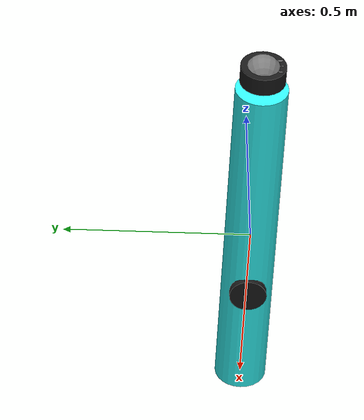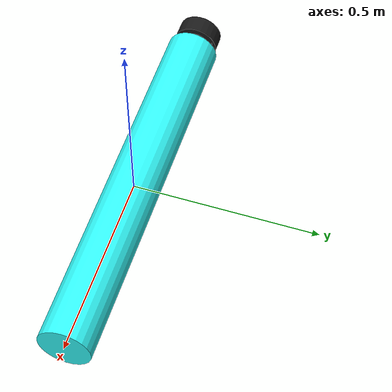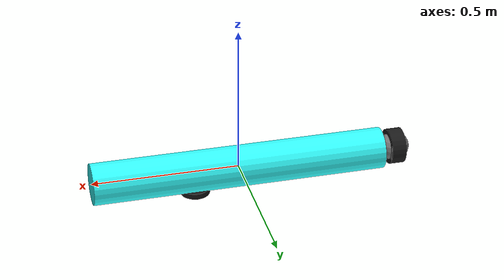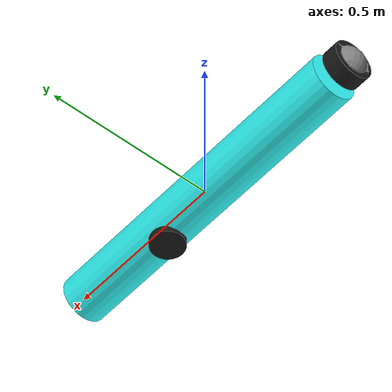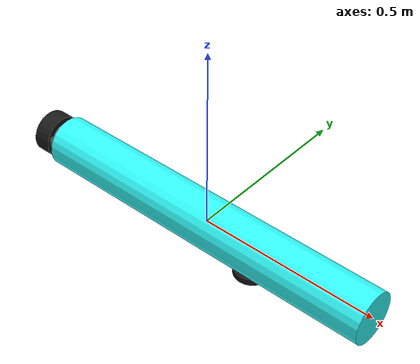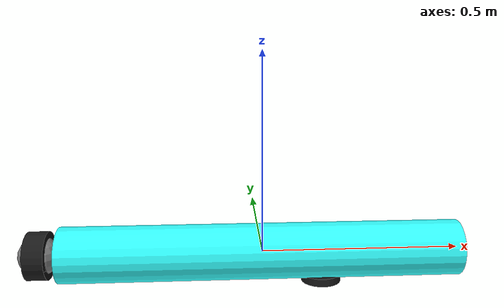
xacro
<?xml version="1.0"?>
<robot name="perri_auv" xmlns:xacro="http://www.ros.org/wiki/xacro">

    <xacro:include filename="robot_core.xacro" />

    <xacro:include filename="gazebo_control.xacro" />

    <xacro:include filename="lidar.xacro" />

    <xacro:include filename="inertial_macros.xacro" />

</robot>

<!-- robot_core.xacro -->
<robot xmlns:xacro="http://www.ros.org/wiki/xacro">
<!--based on asignment 2 made by Pierre O. H. Boniface-->
    <xacro:include filename="inertial_macros.xacro" />

    <xacro:property name="hull_radius" value="0.07"/>
    <xacro:property name="hull_length" value="1.0"/>
    <xacro:property name="hull_mass"   value="11.618"/>

    <xacro:property name="prop_radius" value="0.06"/>
    <xacro:property name="prop_length" value="0.05"/>
    <xacro:property name="prop_mass"   value="0.37"/>

    <material name="blue"> <color rgba="0.2 1.0 1.0 1.0"/> </material>
    <material name="black"><color rgba="0.1 0.1 0.1 1.0"/> </material>
    <material name="grey"> <color rgba="0.5 0.5 0.5 1.0"/> </material>

    <link name="base_footprint"/>

    <joint name="base_joint" type="fixed">
        <parent link="base_footprint"/>
        <child link="base_link"/>
        <origin xyz="0 0 0" rpy="0 0 0"/>
    </joint>

    <link name="base_link">
        <visual>
            <geometry>
                <cylinder radius="${hull_radius}" length="${hull_length}"/>
            </geometry>
            <origin xyz="0 0 0" rpy="0 -${pi/2} 0"/>
            <material name="blue"/>
        </visual>
        <collision>
            <geometry>
                <cylinder radius="${hull_radius}" length="${hull_length}"/>
            </geometry>
            <origin xyz="0 0 0" rpy="0 -${pi/2} 0"/>
        </collision>
        <xacro:inertial_cylinder mass="${hull_mass}" length="${hull_length}" radius="${hull_radius}">
            <origin xyz="0 0 0" rpy="0 -${pi/2} 0"/>
        </xacro:inertial_cylinder>
        <sensor name="imu_sensor" type="imu">
            <always_on>1</always_on>
            <update_rate>1</update_rate>
            <visualize>true</visualize>
            <topic>imu</topic>
        </sensor>
    </link>

    <link name="steering_yaw_link">
        <visual>
            <geometry><sphere radius="0.05"/></geometry>
            <material name="grey"/>
        </visual>
        <xacro:inertial_sphere mass="0.05" radius="0.05">
            <origin xyz="0 0 0" rpy="0 0 0"/>
        </xacro:inertial_sphere>
    </link>

    <joint name="steering_yaw_joint" type="revolute">
        <parent link="base_link"/>
        <child link="steering_yaw_link"/>
        <origin xyz="-0.55 0 0" rpy="0 0 0"/>
        <axis xyz="0 1 0"/>
        <limit lower="-${pi/2}" upper="${pi/2}" effort="50" velocity="100"/>
        <dynamics damping="2.0" friction="2.0"/>
    </joint>

    <link name="steering_pitch_link">
        <visual>
            <geometry><box size="0.05 0.1 0.05"/></geometry>
            <material name="grey"/>
        </visual>
        <xacro:inertial_box mass="0.05" x="0.05" y="0.1" z="0.05">
            <origin xyz="0 0 0" rpy="0 0 0"/>
        </xacro:inertial_box>
    </link>

    <joint name="steering_pitch_joint" type="revolute">
        <parent link="steering_yaw_link"/>
        <child link="steering_pitch_link"/>
        <origin xyz="0.0 0 0" rpy="0 0 0"/>
        <axis xyz="0 0 1"/>
        <limit lower="-${pi/2}" upper="${pi/2}" effort="50" velocity="100"/>
        <dynamics damping="2.0" friction="2.0"/>
    </joint>

    <link name="propeller_link">
        <visual>
            <geometry>
                <cylinder radius="${prop_radius}" length="${prop_length}"/>
            </geometry>
            <origin xyz="0 0 0" rpy="0 -${pi/2} 0"/>
            <material name="black"/>
        </visual>
        <collision>
            <geometry>
                <cylinder radius="${prop_radius}" length="${prop_length}"/>
            </geometry>
            <origin xyz="0 0 0" rpy="0 -${pi/2} 0"/>
        </collision>
        <xacro:inertial_cylinder mass="${prop_mass}" length="${prop_length}" radius="${prop_radius}">
            <origin xyz="0 0 0" rpy="0 -${pi/2} 0"/>
        </xacro:inertial_cylinder>
    </link>

    <joint name="propeller_joint" type="continuous">
        <parent link="steering_pitch_link"/>
        <child link="propeller_link"/>
        <origin xyz="0 0 0" rpy="0 0 0"/> <axis xyz="1 0 0"/> <limit effort="100.0" velocity="10000.0"/>
        <dynamics damping="0.05" friction="0.0"/>
    </joint>

    <link name="moving_mass">
        <visual>
            <geometry>
                <cylinder radius="0.05" length="0.1"/>
            </geometry>
            <origin xyz="0 0 0" rpy="0 -${pi/2} 0"/>
            <material name="black"/>
        </visual>
        <xacro:inertial_cylinder mass="2.0" length="0.1" radius="0.1">
             <origin xyz="0 0 0" rpy="0 -${pi/2} 0"/>
        </xacro:inertial_cylinder>
    </link>

    <joint name="moving_mass_joint" type="prismatic">
        <parent link="base_link"/>
        <child link="moving_mass"/>
        <origin xyz="0 0 0" rpy="0 0 0"/>
        <axis xyz="1 0 0"/>
        <limit effort="1000.0" lower="-0.5" upper="0.5" velocity="10"/>
    </joint>
    <gazebo reference="base_link">
        <sensor name="imu_sensor" type="imu">
            <always_on>true</always_on>
            <update_rate>100.0</update_rate>
            <topic>imu_sensor_topic</topic>
        </sensor>
    </gazebo>
    <gazebo reference="base_link"> <material>Gazebo/Blue</material> </gazebo>
    <gazebo reference="propeller_link"> <material>Gazebo/Black</material> </gazebo>
    <gazebo reference="moving_mass"> <material>Gazebo/Black</material> </gazebo>

</robot>

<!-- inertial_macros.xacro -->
<robot xmlns:xacro="http://www.ros.org/wiki/xacro" >

    <xacro:macro name="inertial_sphere" params="mass radius *origin">
        <inertial>
            <xacro:insert_block name="origin"/>
            <mass value="${mass}" />
            <inertia ixx="${(2/5) * mass * (radius*radius)}" ixy="0.0" ixz="0.0"
                     iyy="${(2/5) * mass * (radius*radius)}" iyz="0.0"
                     izz="${(2/5) * mass * (radius*radius)}" />
        </inertial>
    </xacro:macro>

    <xacro:macro name="inertial_box" params="mass x y z *origin">
        <inertial>
            <xacro:insert_block name="origin"/>
            <mass value="${mass}" />
            <inertia ixx="${(1/12) * mass * (y*y+z*z)}" ixy="0.0" ixz="0.0"
                    iyy="${(1/12) * mass * (x*x+z*z)}" iyz="0.0"
                    izz="${(1/12) * mass * (x*x+y*y)}" />
        </inertial>
    </xacro:macro>

    <xacro:macro name="inertial_cylinder" params="mass length radius *origin">
        <inertial>
            <xacro:insert_block name="origin"/>
            <mass value="${mass}" />
            <inertia ixx="${(1/12) * mass * (3*radius*radius + length*length)}" ixy="0.0" ixz="0.0"
                    iyy="${(1/12) * mass * (3*radius*radius + length*length)}" iyz="0.0"
                    izz="${(1/2) * mass * (radius*radius)}" />
        </inertial>
    </xacro:macro>

</robot>

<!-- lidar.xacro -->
<robot xmlns:xacro="http://www.ros.org/wiki/xacro" >

    <xacro:property name="lidar_radius" value="0.05"/>
    <xacro:property name="lidar_length" value="0.02"/>
    <xacro:property name="lidar_mass"   value="2"/>

   <joint name="laser_joint" type="fixed">
     <parent link="base_link"/>
     <child  link="laser_link"/>
     <origin xyz="0.15 0 -0.07" rpy="0 0 0"/>
   </joint>

   <link name="laser_link">
      <visual>
         <geometry>
            <cylinder length="${lidar_length}" radius="${lidar_radius}"/>
         </geometry>
         <material name="black"/>
      </visual>
      <collision>
         <geometry>
            <cylinder length="${lidar_length}" radius="${lidar_radius}"/>
         </geometry>
      </collision>
      <xacro:inertial_cylinder mass="${lidar_mass}" length="${lidar_length}" radius="${lidar_radius}">
         <origin xyz="0 0 0" rpy="0 0 0"/>
      </xacro:inertial_cylinder>
   </link>

   <gazebo reference="laser_link">
      <sensor name="laser" type="gpu_lidar">
         <gz_frame_id>laser_link</gz_frame_id>
         <update_rate>30</update_rate>
         <topic>scan</topic>
         <lidar>
            <scan>
               <horizontal>
                  <samples>21</samples>
                  <min_angle>-${pi/2}</min_angle>
                  <max_angle>${pi/2}</max_angle>
               </horizontal>
               <vertical>
                  <samples>5</samples>
                  <min_angle>-${pi/2}</min_angle>
                  <max_angle>0</max_angle>
               </vertical>
            </scan>
            <range>
               <min>0.1</min>
               <max>10</max>
            </range>
         </lidar>
         <visualize>true</visualize>
      </sensor>
   </gazebo>
</robot>
